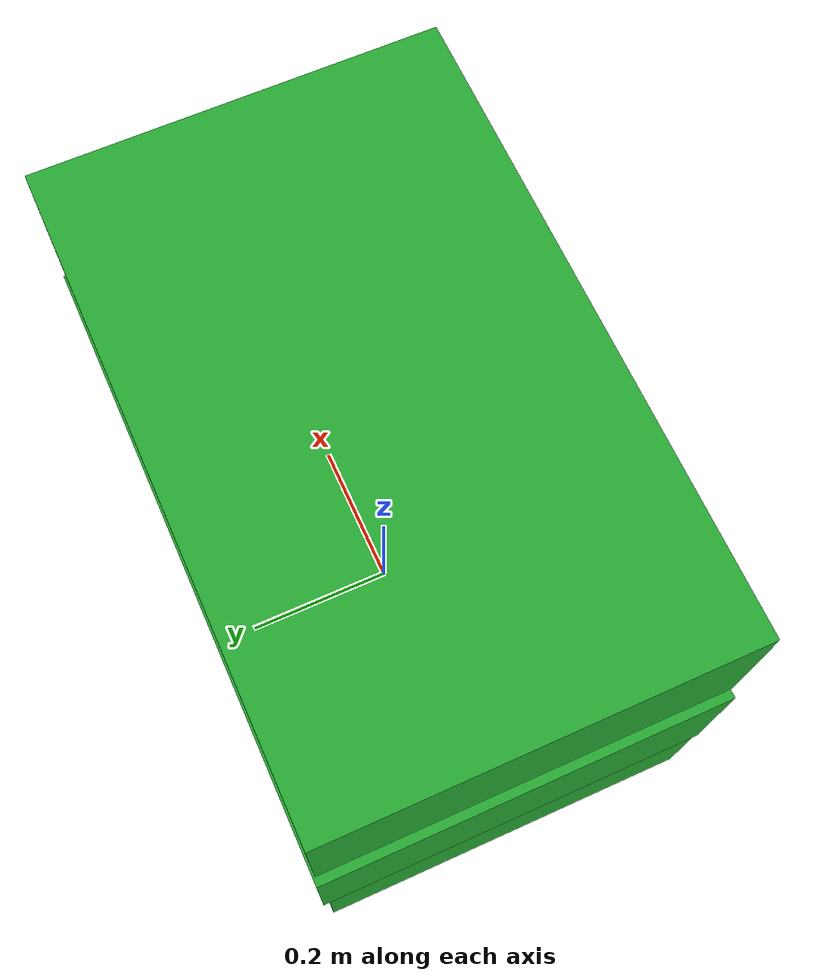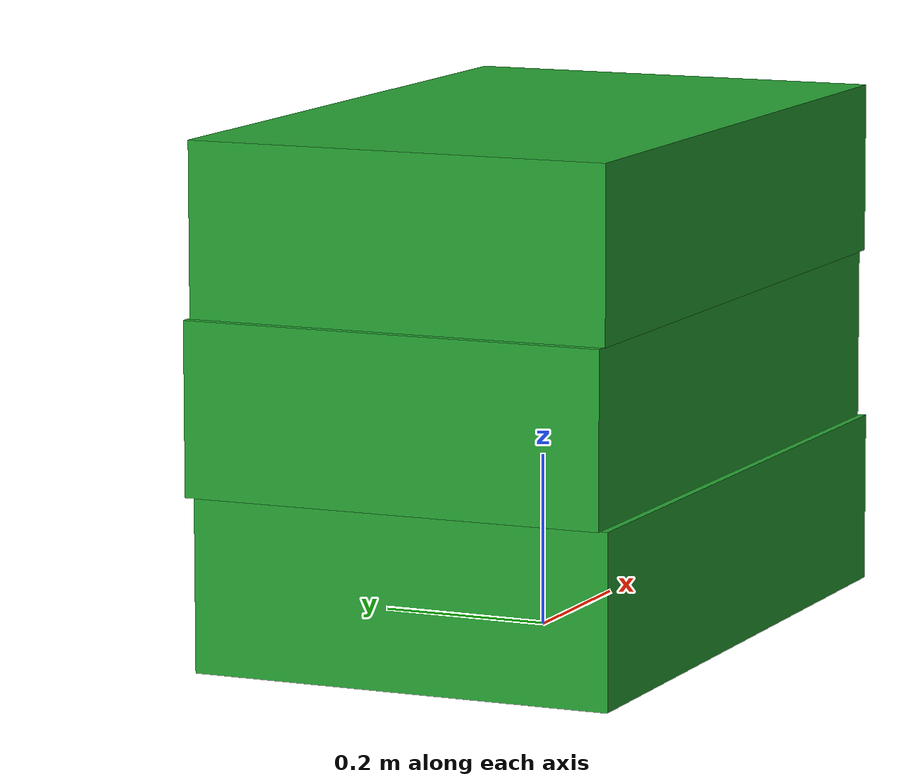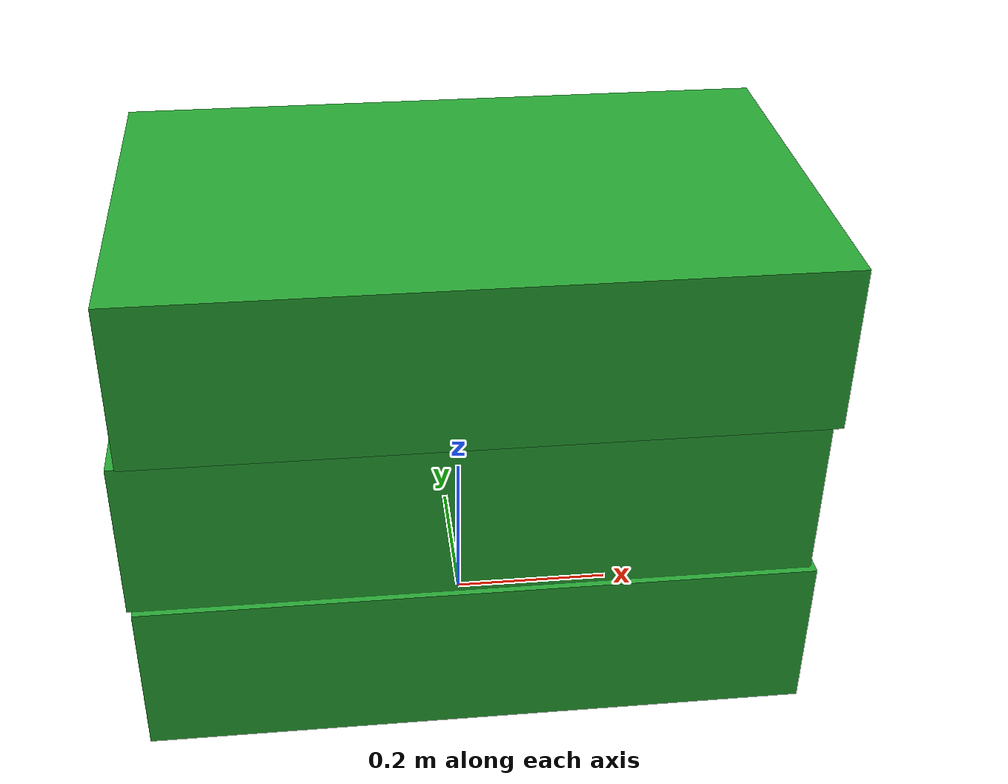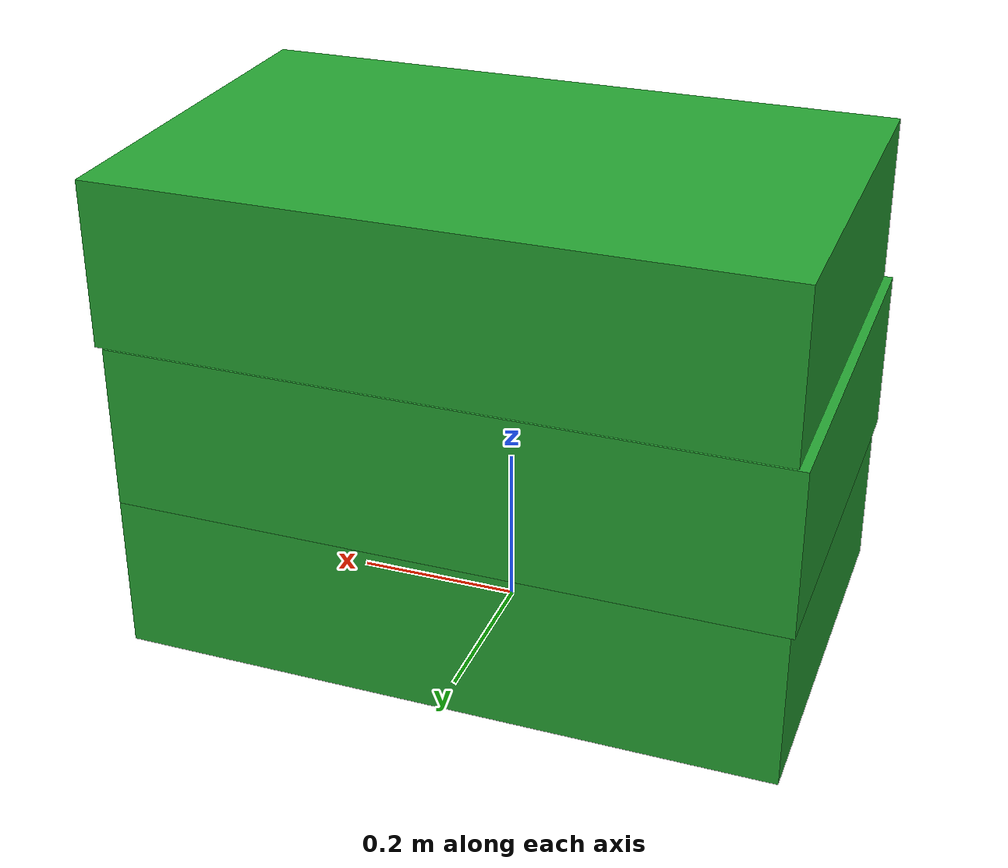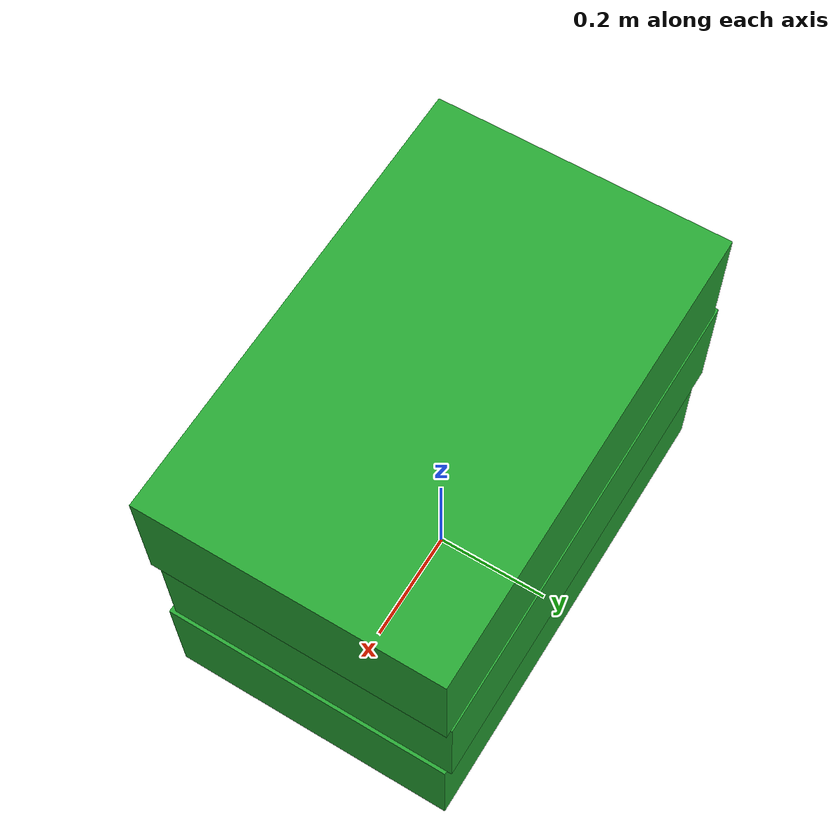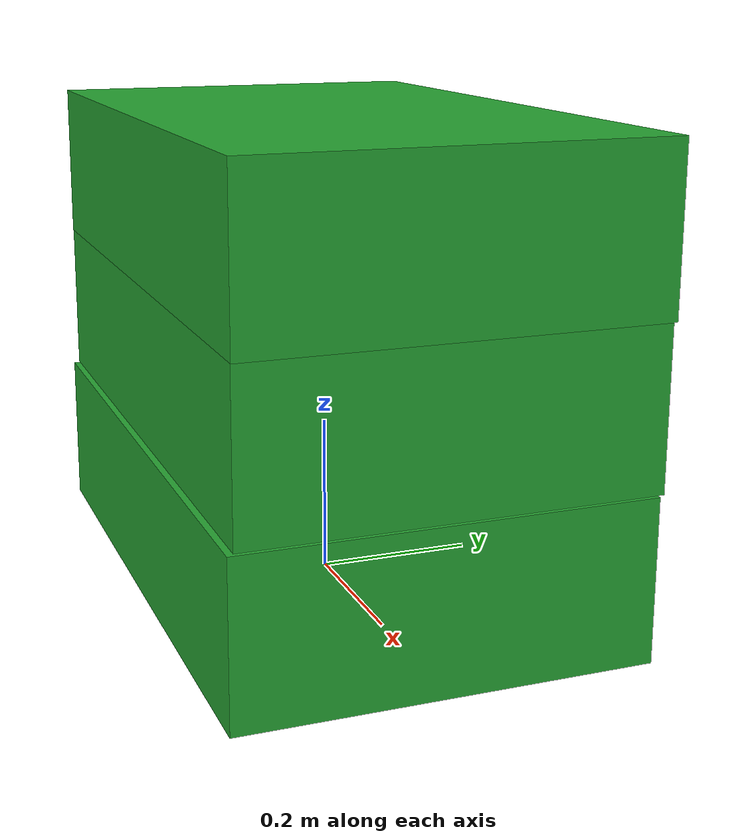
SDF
<?xml version="1.0" encoding="UTF-8"?>
<sdf version='1.4'>
    <model name="baggage_D_x3">
        <model name="baggage_D_0">
            <static>true</static>
            <link name="link">
                <collision name="collision">
                    <geometry>
                    <box>
                        <size>0.8 0.5 0.2</size>
                    </box>
                    </geometry>
                </collision>
                <visual name="visual">
                    <geometry>
                    <box>
                        <size>0.8 0.5 0.2</size>
                    </box>
                    </geometry>
                    <material>
                    <script>
                        <uri>file://media/materials/scripts/gazebo.material</uri>
                        <name>Gazebo/Green</name>
                    </script>
                    </material>
                </visual>
            </link>
            <pose frame=''>0 0 0.1 0 0 0</pose>
        </model>
        <model name="baggage_D_1">
            <static>true</static>
            <link name="link">
                <collision name="collision">
                    <geometry>
                    <box>
                        <size>0.8 0.5 0.2</size>
                    </box>
                    </geometry>
                </collision>
                <visual name="visual">
                    <geometry>
                    <box>
                        <size>0.8 0.5 0.2</size>
                    </box>
                    </geometry>
                    <material>
                    <script>
                        <uri>file://media/materials/scripts/gazebo.material</uri>
                        <name>Gazebo/Green</name>
                    </script>
                    </material>
                </visual>
            </link>
            <pose frame=''>-0.0056 0.0083 0.3 0 0 0</pose>
        </model>
        <model name="baggage_D_2">
            <static>true</static>
            <link name="link">
                <collision name="collision">
                    <geometry>
                    <box>
                        <size>0.8 0.5 0.2</size>
                    </box>
                    </geometry>
                </collision>
                <visual name="visual">
                    <geometry>
                    <box>
                        <size>0.8 0.5 0.2</size>
                    </box>
                    </geometry>
                    <material>
                    <script>
                        <uri>file://media/materials/scripts/gazebo.material</uri>
                        <name>Gazebo/Green</name>
                    </script>
                    </material>
                </visual>
            </link>
            <pose frame=''>0.0053 0.0057 0.5 0 0 0</pose>
        </model>
    </model>
</sdf>
